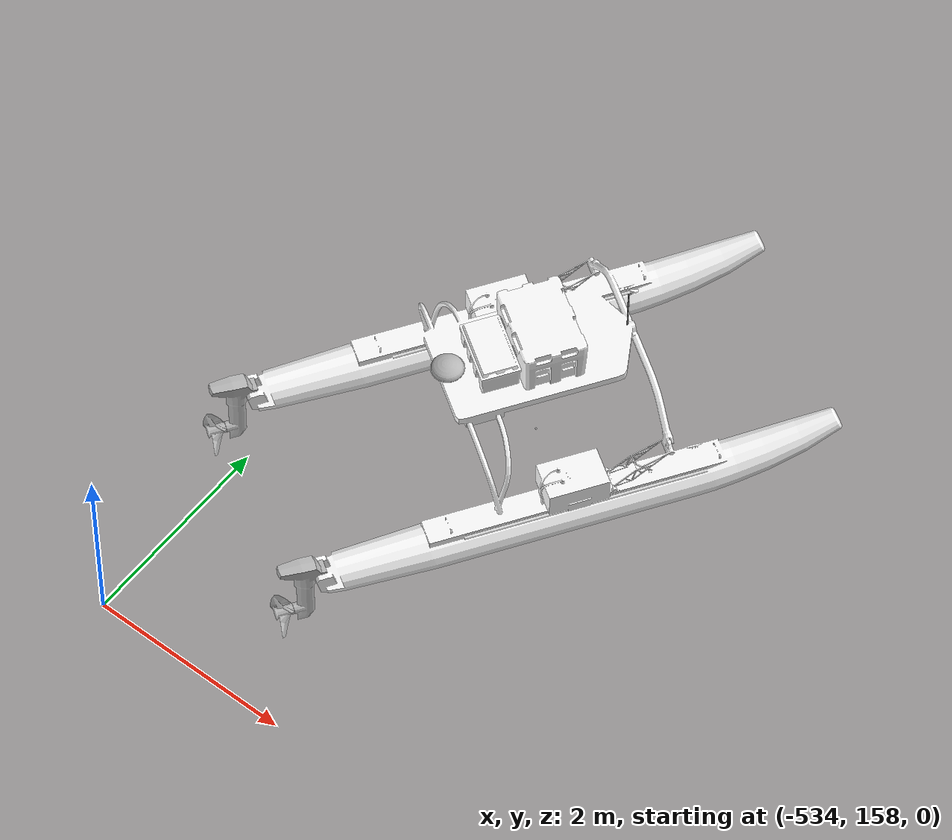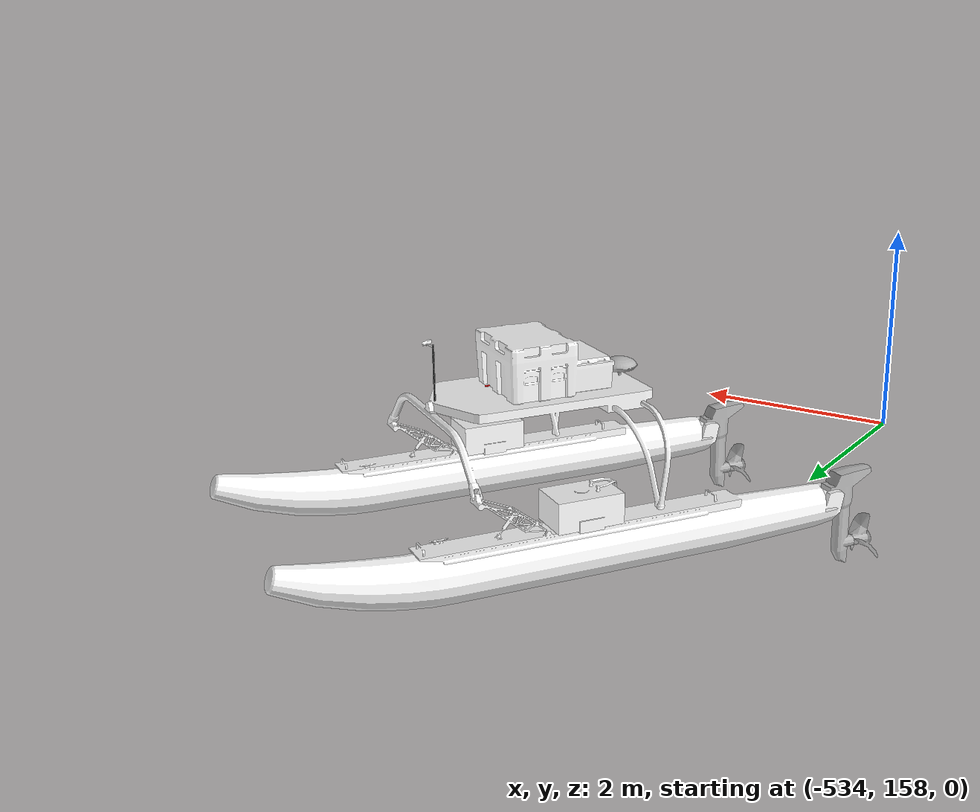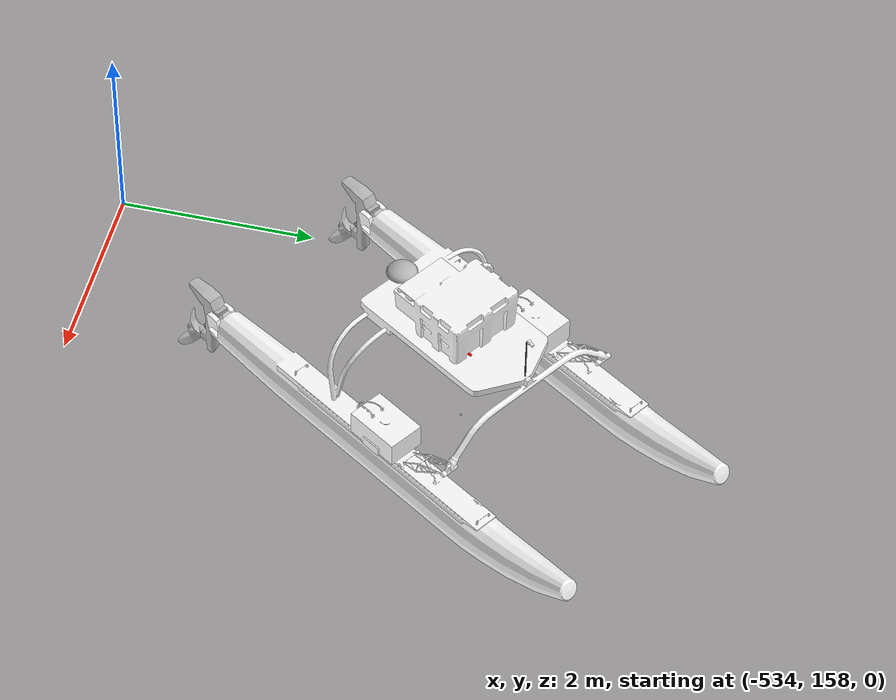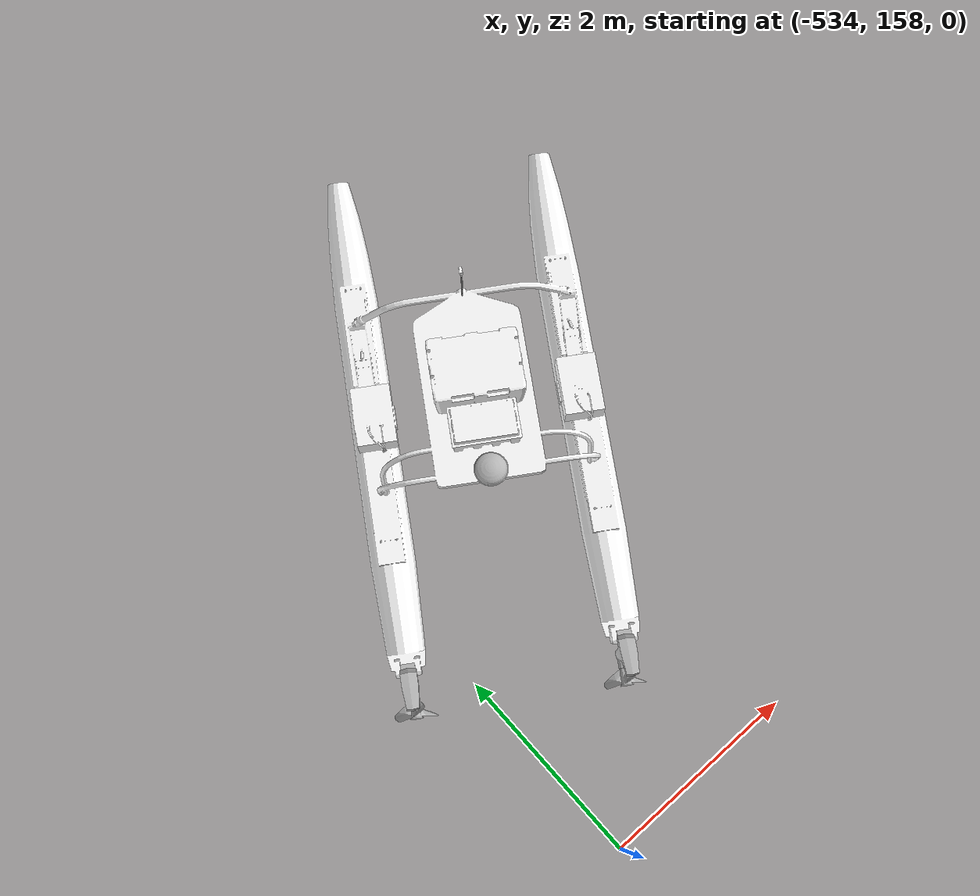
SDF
<sdf version="1.10">
 <world name="scan_dock_deliver_task">
  <physics name="4ms" type="dart">
   <max_step_size>0.0040000000000000001</max_step_size>
   <real_time_factor>1</real_time_factor>
   <real_time_update_rate>1000</real_time_update_rate>
  </physics>
  <plugin name="gz::sim::systems::Physics" filename="gz-sim-physics-system"/>
  <plugin name="gz::sim::systems::UserCommands" filename="gz-sim-user-commands-system"/>
  <plugin name="gz::sim::systems::Sensors" filename="gz-sim-sensors-system">
   <render_engine>ogre2</render_engine>
   <disable_on_drained_battery>true</disable_on_drained_battery>
  </plugin>
  <plugin name="gz::sim::systems::Imu" filename="gz-sim-imu-system"/>
  <plugin name="gz::sim::systems::Magnetometer" filename="gz-sim-magnetometer-system"/>
  <plugin name="gz::sim::systems::ForceTorque" filename="gz-sim-forcetorque-system"/>
  <plugin name="gz::sim::systems::ParticleEmitter2" filename="gz-sim-particle-emitter2-system"/>
  <plugin name="gz::sim::systems::SceneBroadcaster" filename="gz-sim-scene-broadcaster-system"/>
  <plugin name="gz::sim::systems::Contact" filename="gz-sim-contact-system"/>
  <plugin name="gz::sim::systems::NavSat" filename="gz-sim-navsat-system"/>
  <scene>
   <grid>false</grid>
   <ambient>1 1 1 1</ambient>
   <background>0.800000012 0.800000012 0.800000012 1</background>
   <shadows>true</shadows>
  </scene>
  <spherical_coordinates>
   <surface_model>EARTH_WGS84</surface_model>
   <world_frame_orientation>ENU</world_frame_orientation>
   <latitude_deg>-33.724223000000002</latitude_deg>
   <longitude_deg>150.67973599999999</longitude_deg>
   <elevation>0</elevation>
   <heading_deg>0</heading_deg>
  </spherical_coordinates>
  <plugin name="vrx::USVWind" filename="libUSVWind.so">
   <wind_obj>
    <name>wamv</name>
    <link_name>wamv/base_link</link_name>
    <coeff_vector>.5 .5 .33</coeff_vector>
   </wind_obj>
   <wind_direction>240</wind_direction>
   <wind_mean_velocity>0.0</wind_mean_velocity>
   <var_wind_gain_constants>0</var_wind_gain_constants>
   <var_wind_time_constants>2</var_wind_time_constants>
   <random_seed>10</random_seed>
   <update_rate>10</update_rate>
   <topic_wind_speed>/vrx/debug/wind/speed</topic_wind_speed>
   <topic_wind_direction>/vrx/debug/wind/direction</topic_wind_direction>
  </plugin>
  <plugin name="vrx::ScanDockScoringPlugin" filename="libScanDockScoringPlugin.so">
   <vehicle>wamv</vehicle>
   <task_name>scan_dock_deliver</task_name>
   <task_info_topic>/vrx/task/info</task_info_topic>
   <initial_state_duration>10</initial_state_duration>
   <ready_state_duration>10</ready_state_duration>
   <running_state_duration>300</running_state_duration>
   <release_topic>/vrx/release</release_topic>
   <color_sequence_topic>/vrx/scan_dock_deliver/color_sequence</color_sequence_topic>
   <color_1>red</color_1>
   <color_2>green</color_2>
   <color_3>blue</color_3>
   <bays>
    <bay>
     <name>bay1</name>
     <internal_activation_topic>/vrx/dock_2022/bay_1/contain</internal_activation_topic>
     <external_activation_topic>/vrx/dock_2022/bay_1_external/contain</external_activation_topic>
     <symbol_topic>/vrx/dock_2022_placard3/symbol</symbol_topic>
     <min_dock_time>10.0</min_dock_time>
     <correct_dock>True</correct_dock>
     <symbol>blue_triangle</symbol>
    </bay>
   </bays>
  </plugin>
  <plugin name="vrx::PublisherPlugin" filename="libPublisherPlugin.so">
   <message type="gz.msgs.Param" topic="/vrx/wavefield/parameters" every="2.0">params { key: "direction" value { type: DOUBLE double_value: 0.0 } } params { key: "gain" value { type: DOUBLE double_value: 0.3 } } params { key: "period" value { type: DOUBLE double_value: 5 } } params { key: "steepness" value { type: DOUBLE double_value: 0 } }</message>
  </plugin>
  <gravity>0 0 -9.8000000000000007</gravity>
  <magnetic_field>5.5644999999999998e-06 2.2875799999999999e-05 -4.2388400000000002e-05</magnetic_field>
  <atmosphere type="adiabatic"/>
  <include>
   <uri>file:///home/moonlab/ASV-Autonomous-Docking/install/share/vrx_gz/models/platform</uri>
   <name>platform</name>
  </include>
  <model name="wamv">
   <link name="wamv/base_link">
    <inertial>
     <pose>-0.0091897190339219996 1.4335351508916341e-17 0.24281062328901579 0 0 0</pose>
     <mass>247.82884999999999</mass>
     <inertia>
      <ixx>220.95081900491911</ixx>
      <ixy>-3.2648440516148013e-17</ixy>
      <ixz>2.835550517642174</ixz>
      <iyy>449.21365729546102</iyy>
      <iyz>-9.137202166832885e-16</iyz>
      <izz>498.81256554239633</izz>
     </inertia>
    </inertial>
    <collision name="wamv/base_link_fixed_joint_lump__left_float_collision">
     <pose>-0.40000000000000002 1.03 0.20000000000000001 0 1.5707963267948966 0</pose>
     <geometry><cylinder><length>4</length><radius>0.20000000000000001</radius></cylinder></geometry>
    </collision>
    <collision name="wamv/base_link_fixed_joint_lump__left_mid_float_collision_1">
     <pose>1.8500000000000001 1.03 0.29999999999999999 0 1.3799999999999997 0</pose>
     <geometry><cylinder><length>0.5</length><radius>0.17000000000000001</radius></cylinder></geometry>
    </collision>
    <collision name="wamv/base_link_fixed_joint_lump__left_front_float_collision_2">
     <pose>2.2999999999999998 1.03 0.40000000000000002 0 1.3 0</pose>
     <geometry><cylinder><length>0.45000000000000001</length><radius>0.12</radius></cylinder></geometry>
    </collision>
    <collision name="wamv/base_link_fixed_joint_lump__front_left_beam_lower_collision_3">
     <pose>0.90000000000000002 0.84999999999999998 1 0.78000000000000003 0 0</pose>
     <geometry><cylinder><length>0.5</length><radius>0.040000000000000001</radius></cylinder></geometry>
    </collision>
    <collision name="wamv/base_link_fixed_joint_lump__front_left_beam_upper_collision_4">
     <pose>0.90000000000000002 0.59999999999999998 1.1799999999999999 1.3500000000000001 0 0</pose>
     <geometry>
      <cylinder><length>0.20000000000000001</length><radius>0.040000000000000001</radius></cylinder>
     </geometry>
    </collision>
    <collision name="wamv/base_link_fixed_joint_lump__mid_left_beam_lower_collision_5">
     <pose>-0.65000000000000002 0.98999999999999999 0.69999999999999996 0.099999999999999964 0.25000000000000011 0</pose>
     <geometry>
      <cylinder><length>0.45000000000000001</length><radius>0.029999999999999999</radius></cylinder>
     </geometry>
    </collision>
    <collision name="wamv/base_link_fixed_joint_lump__mid_left_beam_medium_collision_6">
     <pose>-0.56999999999999995 0.87 1.05 0.75000000000000056 0.25000000000000028 0</pose>
     <geometry>
      <cylinder><length>0.32000000000000001</length><radius>0.029999999999999999</radius></cylinder>
     </geometry>
    </collision>
    <collision name="wamv/base_link_fixed_joint_lump__mid_left_beam_upper_collision_7">
     <pose>-0.55000000000000004 0.65000000000000002 1.1699999999999999 1.3500000000000001 0.25000000000000011 0</pose>
     <geometry>
      <cylinder><length>0.29999999999999999</length><radius>0.029999999999999999</radius></cylinder>
     </geometry>
    </collision>
    <collision name="wamv/base_link_fixed_joint_lump__rear_left_beam_lower_collision_8">
     <pose>-0.73999999999999999 1.03 0.69999999999999996 0 -0.14999999999999999 0</pose>
     <geometry>
      <cylinder><length>0.45000000000000001</length><radius>0.029999999999999999</radius></cylinder>
     </geometry>
    </collision>
    <collision name="wamv/base_link_fixed_joint_lump__rear_left_beam_medium_collision_9">
     <pose>-0.79000000000000004 0.91000000000000003 1.05 0.75000000000000033 -0.14999999999999999 -2.1053085164236764e-17</pose>
     <geometry>
      <cylinder><length>0.32000000000000001</length><radius>0.029999999999999999</radius></cylinder>
     </geometry>
    </collision>
    <collision name="wamv/base_link_fixed_joint_lump__rear_left_beam_upper_collision_10">
     <pose>-0.81000000000000005 0.67000000000000004 1.1799999999999999 1.45 -0.14999999999999999 0</pose>
     <geometry>
      <cylinder><length>0.29999999999999999</length><radius>0.029999999999999999</radius></cylinder>
     </geometry>
    </collision>
    <collision name="wamv/base_link_fixed_joint_lump__left_joint_collision_11">
     <pose>0.57999999999999996 1.03 0.59999999999999998 0 -0.59999999999999987 0</pose>
     <geometry><box><size>0.65000000000000002 0.20000000000000001 0.10000000000000001</size></box></geometry>
    </collision>
    <collision name="wamv/base_link_fixed_joint_lump__right_float_collision_12">
     <pose>-0.40000000000000002 -1.03 0.20000000000000001 0 1.5707963267948966 0</pose>
     <geometry><cylinder><length>4</length><radius>0.20000000000000001</radius></cylinder></geometry>
    </collision>
    <collision name="wamv/base_link_fixed_joint_lump__right_mid_float_collision_13">
     <pose>1.8500000000000001 -1.03 0.29999999999999999 0 1.3799999999999997 0</pose>
     <geometry><cylinder><length>0.5</length><radius>0.17000000000000001</radius></cylinder></geometry>
    </collision>
    <collision name="wamv/base_link_fixed_joint_lump__right_front_float_collision_14">
     <pose>2.2999999999999998 -1.03 0.40000000000000002 0 1.3 0</pose>
     <geometry><cylinder><length>0.45000000000000001</length><radius>0.12</radius></cylinder></geometry>
    </collision>
    <collision name="wamv/base_link_fixed_joint_lump__front_right_beam_lower_collision_15">
     <pose>0.90000000000000002 -0.84999999999999998 1 -0.78000000000000003 0 0</pose>
     <geometry><cylinder><length>0.5</length><radius>0.040000000000000001</radius></cylinder></geometry>
    </collision>
    <collision name="wamv/base_link_fixed_joint_lump__front_right_beam_upper_collision_16">
     <pose>0.90000000000000002 -0.59999999999999998 1.1799999999999999 -1.3500000000000001 0 0</pose>
     <geometry>
      <cylinder><length>0.20000000000000001</length><radius>0.040000000000000001</radius></cylinder>
     </geometry>
    </collision>
    <collision name="wamv/base_link_fixed_joint_lump__mid_right_beam_lower_collision_17">
     <pose>-0.65000000000000002 -0.98999999999999999 0.69999999999999996 -0.099999999999999964 0.25000000000000011 0</pose>
     <geometry>
      <cylinder><length>0.45000000000000001</length><radius>0.029999999999999999</radius></cylinder>
     </geometry>
    </collision>
    <collision name="wamv/base_link_fixed_joint_lump__mid_right_beam_medium_collision_18">
     <pose>-0.56999999999999995 -0.87 1.05 -0.75000000000000056 0.25000000000000028 0</pose>
     <geometry>
      <cylinder><length>0.32000000000000001</length><radius>0.029999999999999999</radius></cylinder>
     </geometry>
    </collision>
    <collision name="wamv/base_link_fixed_joint_lump__mid_right_beam_upper_collision_19">
     <pose>-0.55000000000000004 -0.65000000000000002 1.1699999999999999 -1.3500000000000001 0.25000000000000011 0</pose>
     <geometry>
      <cylinder><length>0.29999999999999999</length><radius>0.029999999999999999</radius></cylinder>
     </geometry>
    </collision>
    <collision name="wamv/base_link_fixed_joint_lump__rear_right_beam_lower_collision_20">
     <pose>-0.73999999999999999 -1.03 0.69999999999999996 0 -0.14999999999999999 0</pose>
     <geometry>
      <cylinder><length>0.45000000000000001</length><radius>0.029999999999999999</radius></cylinder>
     </geometry>
    </collision>
    <collision name="wamv/base_link_fixed_joint_lump__rear_right_beam_medium_collision_21">
     <pose>-0.79000000000000004 -0.91000000000000003 1.05 -0.75000000000000033 -0.14999999999999999 2.1053085164236764e-17</pose>
     <geometry>
      <cylinder><length>0.32000000000000001</length><radius>0.029999999999999999</radius></cylinder>
     </geometry>
    </collision>
    <collision name="wamv/base_link_fixed_joint_lump__rear_right_beam_upper_collision_22">
     <pose>-0.81000000000000005 -0.67000000000000004 1.1799999999999999 -1.45 -0.14999999999999999 0</pose>
     <geometry>
      <cylinder><length>0.29999999999999999</length><radius>0.029999999999999999</radius></cylinder>
     </geometry>
    </collision>
    <collision name="wamv/base_link_fixed_joint_lump__right_joint_collision_23">
     <pose>0.57999999999999996 -1.03 0.59999999999999998 0 -0.59999999999999987 0</pose>
     <geometry><box><size>0.65000000000000002 0.20000000000000001 0.10000000000000001</size></box></geometry>
    </collision>
    <collision name="wamv/base_link_fixed_joint_lump__top_base_collision_24">
     <pose>0 0 1.25 0 0 0</pose>
     <geometry><box><size>1.8500000000000001 1 0.10000000000000001</size></box></geometry>
    </collision>
    <collision name="wamv/base_link_fixed_joint_lump__front_right_camera_post_collision_collision_25">
     <pose>0.84999999999999998 0 1.5347500000000001 0 0 0</pose>
     <geometry><cylinder><length>0.47649999999999998</length><radius>0.0076</radius></cylinder></geometry>
    </collision>
    <collision name="wamv/base_link_fixed_joint_lump__front_right_camera_post_arm_collision_collision_26">
     <pose>0.88 0 1.7729999999999999 -1.2042771838760871 5.5511151231257827e-17 -1.570796326794897</pose>
     <geometry>
      <cylinder><length>0.065000000000000002</length><radius>0.0080000000000000002</radius></cylinder>
     </geometry>
    </collision>
    <collision name="wamv/base_link_fixed_joint_lump__front_right_camera_lens_collision_collision_27">
     <pose>0.91738666487320319 0 1.7953412571881551 3.1415926535897931 1.3089969389957472 3.1415926535897931</pose>
     <geometry>
      <cylinder><length>0.042000000000000003</length><radius>0.014999999999999999</radius></cylinder>
     </geometry>
    </collision>
    <collision name="wamv/base_link_fixed_joint_lump__front_right_camera_box_collision_collision_28">
     <pose>0.88019852056107406 0 1.8053057904246019 0 0.26179938779914941 0</pose>
     <geometry><box><size>0.035999999999999997 0.029999999999999999 0.029999999999999999</size></box></geometry>
    </collision>
    <collision name="wamv/base_link_fixed_joint_lump__cpu_case_1_collision_collision_29">
     <pose>0.035000000000000003 0 1.53 0 0 0</pose>
     <geometry><box><size>0.59499999999999997 0.82999999999999996 0.46999999999999997</size></box></geometry>
    </collision>
    <collision name="wamv/base_link_fixed_joint_lump__cpu_case_2_collision_collision_30">
     <pose>-0.45000000000000001 0 1.4379999999999999 0 0 0</pose>
     <geometry><box><size>0.375 0.64000000000000001 0.28000000000000003</size></box></geometry>
    </collision>
    <collision name="wamv/base_link_fixed_joint_lump__left_battery_collision_collision_31">
     <pose>0 1 0.59999999999999998 0 0 0</pose>
     <geometry><box><size>0.59999999999999998 0.40000000000000002 0.31</size></box></geometry>
    </collision>
    <collision name="wamv/base_link_fixed_joint_lump__right_battery_collision_collision_32">
     <pose>0 -1 0.59999999999999998 0 0 0</pose>
     <geometry><box><size>0.59999999999999998 0.40000000000000002 0.31</size></box></geometry>
    </collision>
    <visual name="wamv/base_link_visual">
     <geometry>
      <mesh>
       <scale>1 1 1</scale>
       <uri>file:///model://wamv_description/models/WAM-V-Base/mesh/WAM-V-Base.dae</uri>
      </mesh>
     </geometry>
     <material>
      <diffuse>1 1 1 1</diffuse>
      <specular>1 1 1 1</specular>
      <pbr>
       <metal>
        <albedo_map>model://wamv_description/models/WAM-V-Base/mesh/WAM-V_Albedo.png</albedo_map>
        <normal_map>model://wamv_description/models/WAM-V-Base/mesh/WAM-V_Normal.png</normal_map>
        <roughness_map>model://wamv_description/models/WAM-V-Base/mesh/WAM-V_Roughness.png</roughness_map>
        <metalness_map>model://wamv_description/models/WAM-V-Base/mesh/WAM-V_Metalness.png</metalness_map>
       </metal>
      </pbr>
     </material>
    </visual>
    <visual name="wamv/base_link_fixed_joint_lump__wamv/front_right_camera_post_link_visual_1">
     <pose>0.84999999999999998 0 1.5347500000000001 0 0 0</pose>
     <geometry><cylinder><length>0.47649999999999998</length><radius>0.0076</radius></cylinder></geometry>
     <material><diffuse>0 0 0 1</diffuse><ambient>0 0 0 1</ambient></material>
    </visual>
    <visual name="wamv/base_link_fixed_joint_lump__front_right_camera_post_arm_visual_visual_2">
     <pose>0.84199999999999997 0 1.77 -1.0471975511965981 5.5511151231257827e-17 -1.570796326794897</pose>
     <geometry>
      <mesh>
       <scale>1 1 1</scale>
       <uri>file:///model://vrx_gazebo/models/sensor_post/mesh/sensor_post_arm.dae</uri>
      </mesh>
     </geometry>
    </visual>
    <visual name="wamv/base_link_fixed_joint_lump__wamv/front_right_camera_link_visual_3">
     <pose>0.86812444773246067 0 1.8085410284883829 0.26179938779914941 2.7755575615628914e-17 1.570796326794897</pose>
     <geometry>
      <mesh><scale>1 1 1</scale><uri>file:///model://vrx_gazebo/models/mono_camera/mesh/mono_camera.dae</uri></mesh>
     </geometry>
     <material>
      <diffuse>1 1 1 1</diffuse>
      <specular>1 1 1 1</specular>
      <pbr>
       <metal>
        <albedo_map>model://vrx_gazebo/models/mono_camera/mesh/mono_camera_Albedo.png</albedo_map>
        <normal_map>model://vrx_gazebo/models/mono_camera/mesh/mono_camera_Normal.png</normal_map>
        <roughness_map>model://vrx_gazebo/models/mono_camera/mesh/mono_camera_Roughness.png</roughness_map>
        <metalness_map>model://vrx_gazebo/models/mono_camera/mesh/mono_camera_Metalness.png</metalness_map>
       </metal>
      </pbr>
     </material>
    </visual>
    <visual name="wamv/base_link_fixed_joint_lump__wamv/cpu_cases_link_visual_4">
     <pose>-0.076999999999999999 0 0 0 0 0</pose>
     <geometry>
      <mesh><scale>1 1 1</scale><uri>file:///model://vrx_gazebo/models/cpu_cases/mesh/cpu_cases.dae</uri></mesh>
     </geometry>
     <material>
      <diffuse>1 1 1 1</diffuse>
      <specular>1 1 1 1</specular>
      <pbr>
       <metal>
        <albedo_map>model://vrx_gazebo/models/cpu_cases/mesh/cpu_cases_Albedo.png</albedo_map>
        <normal_map>model://vrx_gazebo/models/cpu_cases/mesh/cpu_cases_Normal.png</normal_map>
        <roughness_map>model://vrx_gazebo/models/cpu_cases/mesh/cpu_cases_Roughness.png</roughness_map>
        <metalness_map>model://vrx_gazebo/models/cpu_cases/mesh/cpu_cases_Metalness.png</metalness_map>
       </metal>
      </pbr>
     </material>
    </visual>
    <visual name="wamv/base_link_fixed_joint_lump__wamv/left_battery_link_visual_5">
     <pose>0 -0.03000000000000003 0 0 0 0</pose>
     <geometry>
      <mesh><scale>1 1 1</scale><uri>file:///model://vrx_gazebo/models/battery/mesh/battery.dae</uri></mesh>
     </geometry>
     <material>
      <diffuse>1 1 1 1</diffuse>
      <specular>1 1 1 1</specular>
      <pbr>
       <metal>
        <albedo_map>model://vrx_gazebo/models/battery/mesh/battery_Albedo.png</albedo_map>
        <normal_map>model://vrx_gazebo/models/battery/mesh/battery_Normal.png</normal_map>
        <roughness_map>model://vrx_gazebo/models/battery/mesh/battery_Roughness.png</roughness_map>
        <metalness_map>model://vrx_gazebo/models/battery/mesh/battery_Metalness.png</metalness_map>
       </metal>
      </pbr>
     </material>
    </visual>
    <visual name="wamv/base_link_fixed_joint_lump__wamv/right_battery_link_visual_6">
     <pose>0 -2.0299999999999998 0 0 0 0</pose>
     <geometry>
      <mesh><scale>1 1 1</scale><uri>file:///model://vrx_gazebo/models/battery/mesh/battery.dae</uri></mesh>
     </geometry>
     <material>
      <diffuse>1 1 1 1</diffuse>
      <specular>1 1 1 1</specular>
      <pbr>
       <metal>
        <albedo_map>model://vrx_gazebo/models/battery/mesh/battery_Albedo.png</albedo_map>
        <normal_map>model://vrx_gazebo/models/battery/mesh/battery_Normal.png</normal_map>
        <roughness_map>model://vrx_gazebo/models/battery/mesh/battery_Roughness.png</roughness_map>
        <metalness_map>model://vrx_gazebo/models/battery/mesh/battery_Metalness.png</metalness_map>
       </metal>
      </pbr>
     </material>
    </visual>
    <sensor name="contact_sensor" type="contact">
     <contact>
      <collision>wamv/base_link_fixed_joint_lump__top_base_collision_24</collision>
      <collision>wamv/base_link_fixed_joint_lump__left_float_collision</collision>
      <collision>wamv/base_link_fixed_joint_lump__left_mid_float_collision_1</collision>
      <collision>wamv/base_link_fixed_joint_lump__left_front_float_collision_2</collision>
      <collision>wamv/base_link_fixed_joint_lump__right_float_collision_12</collision>
      <collision>wamv/base_link_fixed_joint_lump__right_mid_float_collision_13</collision>
      <collision>wamv/base_link_fixed_joint_lump__right_front_float_collision_14</collision>
      <topic>/vrx/contacts</topic>
     </contact>
     <always_on>true</always_on>
     <update_rate>5</update_rate>
    </sensor>
    <sensor name="front_right_camera_sensor" type="camera">
     <pose>0.90000000000000002 0 1.8 0 0.261799 0</pose>
     <topic>__default__</topic>
     <update_rate>30</update_rate>
     <enable_metrics>false</enable_metrics>
     <camera name="front_right_camera_camera">
      <horizontal_fov>1.3962634</horizontal_fov>
      <image>
       <width>1280</width>
       <height>720</height>
       <format>RGB_INT8</format>
       <anti_aliasing>4</anti_aliasing>
      </image>
      <camera_info_topic>__default__</camera_info_topic>
      <triggered>false</triggered>
      <clip><near>0.050000000000000003</near><far>400</far></clip>
      <save enabled="false"><path>__default__</path></save>
      <visibility_mask>4294967295</visibility_mask>
      <noise><type>gaussian</type><mean>0</mean><stddev>0.0070000000000000001</stddev></noise>
      <distortion><k1>0</k1><k2>0</k2><k3>0</k3><p1>0</p1><p2>0</p2><center>0.5 0.5</center></distortion>
      <lens>
       <type>stereographic</type>
       <scale_to_hfov>true</scale_to_hfov>
       <cutoff_angle>1.5707963267948966</cutoff_angle>
       <env_texture_size>256</env_texture_size>
      </lens>
     </camera>
    </sensor>
    <enable_wind>true</enable_wind>
   </link>
   <joint name="wamv/gps_wamv_joint" type="revolute">
    <parent>wamv/base_link</parent>
    <child>wamv/gps_wamv_link</child>
    <axis>
     <xyz>0 0 1</xyz>
     <limit>
      <lower>0</lower>
      <upper>0</upper>
      <effort>1000</effort>
      <velocity>0</velocity>
      <stiffness>100000000</stiffness>
      <dissipation>1</dissipation>
     </limit>
     <dynamics>
      <spring_reference>0</spring_reference>
      <spring_stiffness>0</spring_stiffness>
      <damping>0</damping>
      <friction>0</friction>
     </dynamics>
    </axis>
   </joint>
   <link name="wamv/gps_wamv_link">
    <pose>-0.85000000000005116 0 1.2999999999999998 -4.3368086919109258e-19 -3.4694469519290035e-18 1.134997651419667e-10</pose>
    <inertial>
     <mass>1</mass>
     <inertia>
      <ixx>0.0064580000000000002</ixx>
      <ixy>0</ixy>
      <ixz>0</ixz>
      <iyy>0.0064580000000000002</iyy>
      <iyz>0</iyz>
      <izz>0.01125</izz>
     </inertia>
    </inertial>
    <collision name="wamv/gps_wamv_link_fixed_joint_lump__gps_wamv_collision_base_collision">
     <pose>0 0 0.025000000000000001 0 0 0</pose>
     <geometry>
      <cylinder><length>0.050000000000000003</length><radius>0.014999999999999999</radius></cylinder>
     </geometry>
    </collision>
    <collision name="wamv/gps_wamv_link_fixed_joint_lump__gps_wamv_collision_antenna_collision_1">
     <pose>0 0 0.11 0 0 0</pose>
     <geometry>
      <cylinder><length>0.10000000000000001</length><radius>0.14999999999999999</radius></cylinder>
     </geometry>
    </collision>
    <visual name="wamv/gps_wamv_link_fixed_joint_lump__gps_wamv_visual_visual">
     <geometry>
      <mesh><scale>1 1 1</scale><uri>file:///model://wamv_gazebo/models/gps/mesh/gps.dae</uri></mesh>
     </geometry>
    </visual>
    <sensor name="navsat" type="navsat"><always_on>true</always_on><update_rate>20</update_rate></sensor>
    <enable_wind>true</enable_wind>
   </link>
   <joint name="wamv/imu_wamv_joint" type="revolute">
    <parent>wamv/base_link</parent>
    <child>wamv/imu_wamv_link</child>
    <axis>
     <xyz>0 0 1</xyz>
     <limit>
      <lower>0</lower>
      <upper>0</upper>
      <effort>1000</effort>
      <velocity>0</velocity>
      <stiffness>100000000</stiffness>
      <dissipation>1</dissipation>
     </limit>
     <dynamics>
      <spring_reference>0</spring_reference>
      <spring_stiffness>0</spring_stiffness>
      <damping>0</damping>
      <friction>0</friction>
     </dynamics>
    </axis>
   </joint>
   <link name="wamv/imu_wamv_link">
    <pose>0.29999999999998295 -0.19999999999993179 1.2999999999999996 -4.3368086898938127e-19 8.6736173799081404e-19 1.1115552922547069e-11</pose>
    <inertial>
     <mass>0.10000000000000001</mass>
     <inertia>
      <ixx>5.4199999999999998e-06</ixx>
      <ixy>0</ixy>
      <ixz>0</ixz>
      <iyy>2.1039999999999998e-05</iyy>
      <iyz>0</iyz>
      <izz>2.6040000000000001e-05</izz>
     </inertia>
    </inertial>
    <collision name="wamv/imu_wamv_link_fixed_joint_lump__imu_wamv_collision_collision">
     <geometry><box><size>0.050000000000000003 0.025000000000000001 0.0050000000000000001</size></box></geometry>
    </collision>
    <visual name="wamv/imu_wamv_link_fixed_joint_lump__imu_wamv_visual_visual">
     <geometry><box><size>0.050000000000000003 0.025000000000000001 0.0050000000000000001</size></box></geometry>
     <material><diffuse>1 0 0 1</diffuse><ambient>1 0 0 1</ambient></material>
    </visual>
    <sensor name="imu_wamv_sensor" type="imu">
     <topic>__default__</topic>
     <update_rate>100</update_rate>
     <enable_metrics>false</enable_metrics>
     <imu>
      <orientation_reference_frame>
       <localization>ENU</localization>
       <custom_rpy>0 0 0</custom_rpy>
       <grav_dir_x>1 0 0</grav_dir_x>
      </orientation_reference_frame>
      <angular_velocity>
       <x>
        <noise type="gaussian">
         <mean>0</mean>
         <stddev>0.0089999999999999993</stddev>
         <bias_mean>0.00075000000000000002</bias_mean>
         <bias_stddev>0.0050000000000000001</bias_stddev>
         <dynamic_bias_stddev>2.0000000000000002e-05</dynamic_bias_stddev>
         <dynamic_bias_correlation_time>400</dynamic_bias_correlation_time>
         <precision>0.00025000000000000001</precision>
        </noise>
       </x>
       <y>
        <noise type="gaussian">
         <mean>0</mean>
         <stddev>0.0089999999999999993</stddev>
         <bias_mean>0.00075000000000000002</bias_mean>
         <bias_stddev>0.0050000000000000001</bias_stddev>
         <dynamic_bias_stddev>2.0000000000000002e-05</dynamic_bias_stddev>
         <dynamic_bias_correlation_time>400</dynamic_bias_correlation_time>
         <precision>0.00025000000000000001</precision>
        </noise>
       </y>
       <z>
        <noise type="gaussian">
         <mean>0</mean>
         <stddev>0.0089999999999999993</stddev>
         <bias_mean>0.00075000000000000002</bias_mean>
         <bias_stddev>0.0050000000000000001</bias_stddev>
         <dynamic_bias_stddev>2.0000000000000002e-05</dynamic_bias_stddev>
         <dynamic_bias_correlation_time>400</dynamic_bias_correlation_time>
         <precision>0.00025000000000000001</precision>
        </noise>
       </z>
      </angular_velocity>
      <linear_acceleration>
       <x>
        <noise type="gaussian">
         <mean>0</mean>
         <stddev>0.021000000000000001</stddev>
         <bias_mean>0.050000000000000003</bias_mean>
         <bias_stddev>0.0074999999999999997</bias_stddev>
         <dynamic_bias_stddev>0.00037500000000000001</dynamic_bias_stddev>
         <dynamic_bias_correlation_time>175</dynamic_bias_correlation_time>
         <precision>0.0050000000000000001</precision>
        </noise>
       </x>
       <y>
        <noise type="gaussian">
         <mean>0</mean>
         <stddev>0.021000000000000001</stddev>
         <bias_mean>0.050000000000000003</bias_mean>
         <bias_stddev>0.0074999999999999997</bias_stddev>
         <dynamic_bias_stddev>0.00037500000000000001</dynamic_bias_stddev>
         <dynamic_bias_correlation_time>175</dynamic_bias_correlation_time>
         <precision>0.0050000000000000001</precision>
        </noise>
       </y>
       <z>
        <noise type="gaussian">
         <mean>0</mean>
         <stddev>0.021000000000000001</stddev>
         <bias_mean>0.050000000000000003</bias_mean>
         <bias_stddev>0.0074999999999999997</bias_stddev>
         <dynamic_bias_stddev>0.00037500000000000001</dynamic_bias_stddev>
         <dynamic_bias_correlation_time>175</dynamic_bias_correlation_time>
         <precision>0.0050000000000000001</precision>
        </noise>
       </z>
      </linear_acceleration>
      <enable_orientation>true</enable_orientation>
     </imu>
    </sensor>
    <enable_wind>true</enable_wind>
   </link>
   <joint name="wamv/left_chassis_engine_joint" type="revolute">
    <parent>wamv/base_link</parent>
    <child>wamv/left_engine_link</child>
    <axis>
     <xyz>0 0 1</xyz>
     <limit>
      <lower>-3.1415926535897931</lower>
      <upper>3.1415926535897931</upper>
      <effort>10</effort>
      <velocity>10</velocity>
      <stiffness>100000000</stiffness>
      <dissipation>1</dissipation>
     </limit>
     <dynamics>
      <spring_reference>0</spring_reference>
      <spring_stiffness>0</spring_stiffness>
      <damping>0</damping>
      <friction>0</friction>
     </dynamics>
    </axis>
   </joint>
   <link name="wamv/left_engine_link">
    <pose>-2.3737760000002197 1.0271350000000439 0.31823699999999944 4.3368086899420226e-19 -8.6736173798840335e-19 -1.1102230246251565e-15</pose>
    <inertial>
     <mass>15</mass>
     <inertia>
      <ixx>0.88924499999999995</ixx>
      <ixy>0</ixy>
      <ixz>0</ixz>
      <iyy>0.91112499999999996</iyy>
      <iyz>0</iyz>
      <izz>0.078125</izz>
     </inertia>
    </inertial>
    <collision name="wamv/left_engine_link_fixed_joint_lump__left_engine_vertical_axis_collision_collision">
     <pose>-0.16 0 -0.23999999999999999 0 0 0</pose>
     <geometry><box><size>0.20000000000000001 0.14999999999999999 0.82999999999999996</size></box></geometry>
    </collision>
    <collision name="wamv/left_engine_link_fixed_joint_lump__left_engine_rear_end_collision_collision_1">
     <pose>-0.34000000000000002 0 0.12 0 0 0</pose>
     <geometry><box><size>0.12 0.14999999999999999 0.12</size></box></geometry>
    </collision>
    <visual name="wamv/left_engine_link_visual">
     <geometry>
      <mesh><scale>1 1 1</scale><uri>file:///model://wamv_description/models/engine/mesh/engine.dae</uri></mesh>
     </geometry>
    </visual>
    <enable_wind>true</enable_wind>
   </link>
   <joint name="wamv/left_engine_propeller_joint" type="revolute">
    <parent>wamv/left_engine_link</parent>
    <child>wamv/left_propeller_link</child>
    <axis>
     <xyz>1 0 0</xyz>
     <limit>
      <lower>-inf</lower>
      <upper>inf</upper>
      <effort>100</effort>
      <velocity>100</velocity>
      <stiffness>100000000</stiffness>
      <dissipation>1</dissipation>
     </limit>
     <dynamics>
      <spring_reference>0</spring_reference>
      <spring_stiffness>0</spring_stiffness>
      <damping>0.050000000000000003</damping>
      <friction>0.050000000000000003</friction>
     </dynamics>
    </axis>
   </joint>
   <link name="wamv/left_propeller_link">
    <pose>-2.6519320000001301 1.0271350000002712 -0.19113399999999969 -3.06222061596806e-14 -1.6998739171647854e-29 -1.1102230246251569e-15</pose>
    <inertial>
     <mass>0.5</mass>
     <inertia>
      <ixx>0.0085450000000000005</ixx>
      <ixy>0</ixy>
      <ixz>0</ixz>
      <iyy>0.0085450000000000005</iyy>
      <iyz>0</iyz>
      <izz>0.0144</izz>
     </inertia>
    </inertial>
    <collision name="wamv/left_propeller_link_fixed_joint_lump__left_propeller_collision_collision">
     <pose>-0.080000000000000002 0 0 0 1.5707963267948966 0</pose>
     <geometry>
      <cylinder><length>0.17999999999999999</length><radius>0.23999999999999999</radius></cylinder>
     </geometry>
    </collision>
    <visual name="wamv/left_propeller_link_visual">
     <geometry>
      <mesh>
       <scale>1 1 1</scale>
       <uri>file:///model://wamv_description/models/propeller/mesh/propeller.dae</uri>
      </mesh>
     </geometry>
    </visual>
    <enable_wind>true</enable_wind>
   </link>
   <joint name="wamv/receiver_pinger_joint" type="revolute">
    <parent>wamv/base_link</parent>
    <child>wamv/receiver</child>
    <axis>
     <xyz>0 0 1</xyz>
     <limit>
      <lower>0</lower>
      <upper>0</upper>
      <effort>1000</effort>
      <velocity>0</velocity>
      <stiffness>100000000</stiffness>
      <dissipation>1</dissipation>
     </limit>
     <dynamics>
      <spring_reference>0</spring_reference>
      <spring_stiffness>0</spring_stiffness>
      <damping>0</damping>
      <friction>0</friction>
     </dynamics>
    </axis>
   </joint>
   <link name="wamv/receiver">
    <pose>-8.5265128291212022e-14 0 2.2204460492503131e-16 1.7347234759816289e-18 8.6736173797876215e-19 1.1115997011756919e-11</pose>
    <inertial>
     <mass>0.10000000000000001</mass>
     <inertia>
      <ixx>5.4199999999999998e-06</ixx>
      <ixy>0</ixy>
      <ixz>0</ixz>
      <iyy>2.1039999999999998e-05</iyy>
      <iyz>0</iyz>
      <izz>2.6040000000000001e-05</izz>
     </inertia>
    </inertial>
    <visual name="wamv/receiver_visual"><geometry><sphere><radius>0.01</radius></sphere></geometry></visual>
    <enable_wind>true</enable_wind>
   </link>
   <joint name="wamv/right_chassis_engine_joint" type="revolute">
    <parent>wamv/base_link</parent>
    <child>wamv/right_engine_link</child>
    <axis>
     <xyz>0 0 1</xyz>
     <limit>
      <lower>-3.1415926535897931</lower>
      <upper>3.1415926535897931</upper>
      <effort>10</effort>
      <velocity>10</velocity>
      <stiffness>100000000</stiffness>
      <dissipation>1</dissipation>
     </limit>
     <dynamics>
      <spring_reference>0</spring_reference>
      <spring_stiffness>0</spring_stiffness>
      <damping>0</damping>
      <friction>0</friction>
     </dynamics>
    </axis>
   </joint>
   <link name="wamv/right_engine_link">
    <pose>-2.3737760000001344 -1.0271350000000439 0.3182370000000001 4.3368086899420226e-19 -8.6736173798840335e-19 -1.1102230246251565e-15</pose>
    <inertial>
     <mass>15</mass>
     <inertia>
      <ixx>0.88924499999999995</ixx>
      <ixy>0</ixy>
      <ixz>0</ixz>
      <iyy>0.91112499999999996</iyy>
      <iyz>0</iyz>
      <izz>0.078125</izz>
     </inertia>
    </inertial>
    <collision name="wamv/right_engine_link_fixed_joint_lump__right_engine_vertical_axis_collision_collision">
     <pose>-0.16 0 -0.23999999999999999 0 0 0</pose>
     <geometry><box><size>0.20000000000000001 0.14999999999999999 0.82999999999999996</size></box></geometry>
    </collision>
    <collision name="wamv/right_engine_link_fixed_joint_lump__right_engine_rear_end_collision_collision_1">
     <pose>-0.34000000000000002 0 0.12 0 0 0</pose>
     <geometry><box><size>0.12 0.14999999999999999 0.12</size></box></geometry>
    </collision>
    <visual name="wamv/right_engine_link_visual">
     <geometry>
      <mesh><scale>1 1 1</scale><uri>file:///model://wamv_description/models/engine/mesh/engine.dae</uri></mesh>
     </geometry>
    </visual>
    <enable_wind>true</enable_wind>
   </link>
   <joint name="wamv/right_engine_propeller_joint" type="revolute">
    <parent>wamv/right_engine_link</parent>
    <child>wamv/right_propeller_link</child>
    <axis>
     <xyz>1 0 0</xyz>
     <limit>
      <lower>-inf</lower>
      <upper>inf</upper>
      <effort>100</effort>
      <velocity>100</velocity>
      <stiffness>100000000</stiffness>
      <dissipation>1</dissipation>
     </limit>
     <dynamics>
      <spring_reference>0</spring_reference>
      <spring_stiffness>0</spring_stiffness>
      <damping>0.050000000000000003</damping>
      <friction>0.050000000000000003</friction>
     </dynamics>
    </axis>
   </joint>
   <link name="wamv/right_propeller_link">
    <pose>-2.6519320000001017 -1.0271349999998165 -0.19113399999999992 -3.062741033010853e-14 8.673617379714023e-19 -1.1102230246251569e-15</pose>
    <inertial>
     <mass>0.5</mass>
     <inertia>
      <ixx>0.0085450000000000005</ixx>
      <ixy>0</ixy>
      <ixz>0</ixz>
      <iyy>0.0085450000000000005</iyy>
      <iyz>0</iyz>
      <izz>0.0144</izz>
     </inertia>
    </inertial>
    <collision name="wamv/right_propeller_link_fixed_joint_lump__right_propeller_collision_collision">
     <pose>-0.080000000000000002 0 0 0 1.5707963267948966 0</pose>
     <geometry>
      <cylinder><length>0.17999999999999999</length><radius>0.23999999999999999</radius></cylinder>
     </geometry>
    </collision>
    <visual name="wamv/right_propeller_link_visual">
     <geometry>
      <mesh>
       <scale>1 1 1</scale>
       <uri>file:///model://wamv_description/models/propeller/mesh/propeller.dae</uri>
      </mesh>
     </geometry>
    </visual>
    <enable_wind>true</enable_wind>
   </link>
   <enable_wind>true</enable_wind>
   <plugin name="gz::sim::systems::Thruster" filename="gz-sim-thruster-system">
    <joint_name>wamv/left_engine_propeller_joint</joint_name>
    <thrust_coefficient>0.004422</thrust_coefficient>
    <fluid_density>1000</fluid_density>
    <propeller_diameter>0.2</propeller_diameter>
    <velocity_control>true</velocity_control>
    <max_thrust_cmd>2353.53383667818</max_thrust_cmd>
    <namespace>wamv</namespace>
    <topic>thrusters/left/thrust</topic>
    <name>left</name>
   </plugin>
   <plugin name="gz::sim::systems::JointPositionController" filename="gz-sim-joint-position-controller-system">
    <joint_name>wamv/left_chassis_engine_joint</joint_name>
    <use_velocity_commands>true</use_velocity_commands>
    <topic>wamv/thrusters/left/pos</topic>
    <name>left</name>
   </plugin>
   <plugin name="gz::sim::systems::Thruster" filename="gz-sim-thruster-system">
    <joint_name>wamv/right_engine_propeller_joint</joint_name>
    <thrust_coefficient>0.004422</thrust_coefficient>
    <fluid_density>1000</fluid_density>
    <propeller_diameter>0.2</propeller_diameter>
    <velocity_control>true</velocity_control>
    <max_thrust_cmd>2353.53383667818</max_thrust_cmd>
    <namespace>wamv</namespace>
    <topic>thrusters/right/thrust</topic>
    <name>right</name>
   </plugin>
   <plugin name="gz::sim::systems::JointPositionController" filename="gz-sim-joint-position-controller-system">
    <joint_name>wamv/right_chassis_engine_joint</joint_name>
    <use_velocity_commands>true</use_velocity_commands>
    <topic>wamv/thrusters/right/pos</topic>
    <name>right</name>
   </plugin>
   <plugin name="vrx::Surface" filename="libSurface.so">
    <link_name>wamv/base_link</link_name>
    <hull_length>4.9</hull_length>
    <hull_radius>0.213</hull_radius>
    <fluid_level>0</fluid_level>
    <points><point>0.6 1.03 0</point><point>-1.4 1.03 0</point></points>
    <wavefield><topic>/vrx/wavefield/parameters</topic></wavefield>
   </plugin>
   <plugin name="vrx::Surface" filename="libSurface.so">
    <link_name>wamv/base_link</link_name>
    <hull_length>4.9</hull_length>
    <hull_radius>0.213</hull_radius>
    <fluid_level>0</fluid_level>
    <points><point>0.6 -1.03 0</point><point>-1.4 -1.03 0</point></points>
    <wavefield><topic>/vrx/wavefield/parameters</topic></wavefield>
   </plugin>
   <plugin name="vrx::SimpleHydrodynamics" filename="libSimpleHydrodynamics.so">
    <link_name>wamv/base_link</link_name>
    <xDotU>0.0</xDotU>
    <yDotV>0.0</yDotV>
    <nDotR>0.0</nDotR>
    <xU>100.0</xU>
    <xUU>150.0</xUU>
    <yV>100.0</yV>
    <yVV>100.0</yVV>
    <zW>500.0</zW>
    <kP>300.0</kP>
    <kPP>600.0</kPP>
    <mQ>900.0</mQ>
    <mQQ>900.0</mQQ>
    <nR>800.0</nR>
    <nRR>800.0</nRR>
   </plugin>
   <plugin name="gz::sim::systems::DetachableJoint" filename="gz-sim-detachable-joint-system">
    <parent_link>wamv/base_link</parent_link>
    <child_model>platform</child_model>
    <child_link>dummy_upper</child_link>
    <topic>/vrx/release</topic>
    <suppress_child_warning>true</suppress_child_warning>
   </plugin>
   <plugin name="gz::sim::systems::PosePublisher" filename="libgz-sim-pose-publisher-system.so">
    <publish_link_pose>false</publish_link_pose>
    <publish_sensor_pose>true</publish_sensor_pose>
    <publish_collision_pose>false</publish_collision_pose>
    <publish_visual_pose>false</publish_visual_pose>
    <publish_nested_model_pose>false</publish_nested_model_pose>
    <publish_model_pose>false</publish_model_pose>
    <use_pose_vector_msg>true</use_pose_vector_msg>
    <static_publisher>false</static_publisher>
    <static_update_frequency>1</static_update_frequency>
   </plugin>
   <plugin name="gz::sim::systems::JointStatePublisher" filename="gz-sim-joint-state-publisher-system"/>
   <plugin name="vrx::AcousticPingerPlugin" filename="libAcousticPingerPlugin.so">
    <position>-528 191 -2.0</position>
    <topic>/wamv/sensors/acoustics/receiver/range_bearing</topic>
    <set_position_topic>/pinger/set_pinger_position</set_position_topic>
    <frame_id>pinger</frame_id>
    <range_noise><noise><type>gaussian</type><mean>0.0</mean><stddev>3.0</stddev></noise></range_noise>
    <bearing_noise><noise><type>gaussian</type><mean>0.0</mean><stddev>0.01</stddev></noise></bearing_noise>
    <elevation_noise><noise><type>gaussian</type><mean>0.0</mean><stddev>0.01</stddev></noise></elevation_noise>
   </plugin>
   <frame name="wamv/front_right_camera_to_front_right_camera_link_optical_joint" attached_to="wamv/front_right_camera_link">
    <pose>0 0 0 -1.5707963267948959 -5.5511151231257827e-17 -1.5707963267948959</pose>
   </frame>
   <frame name="wamv/front_right_camera_link_optical" attached_to="wamv/front_right_camera_to_front_right_camera_link_optical_joint"/>
   <frame name="wamv/front_right_camera_post_arm_to_front_right_camera_joint" attached_to="wamv/front_right_camera_post_arm_link">
    <pose>0.02 0 0.027 0 0.26179938779914941 0</pose>
   </frame>
   <frame name="wamv/front_right_camera_link" attached_to="wamv/front_right_camera_post_arm_to_front_right_camera_joint"/>
   <frame name="wamv/front_right_camera_post_to_front_right_camera_post_arm_joint" attached_to="wamv/front_right_camera_post_link">
    <pose>0.029999999999999999 0 0.23824999999999999 0 0 0</pose>
   </frame>
   <frame name="wamv/front_right_camera_post_arm_link" attached_to="wamv/front_right_camera_post_to_front_right_camera_post_arm_joint"/>
   <frame name="wamv/base_to_front_right_camera_post_joint" attached_to="wamv/base_link">
    <pose>0.84999999999999998 0 1.5347500000000001 0 0 0</pose>
   </frame>
   <frame name="wamv/front_right_camera_post_link" attached_to="wamv/base_to_front_right_camera_post_joint"/>
   <frame name="wamv/chasis_cpu_cases_joint" attached_to="wamv/base_link">
    <pose>-0.14999999999999999 0 1.53 0 0 0</pose>
   </frame>
   <frame name="wamv/cpu_cases_link" attached_to="wamv/chasis_cpu_cases_joint"/>
   <frame name="wamv/left_chasis_battery_joint" attached_to="wamv/base_link">
    <pose>0 1 0.45000000000000001 0 0 0</pose>
   </frame>
   <frame name="wamv/left_battery_link" attached_to="wamv/left_chasis_battery_joint"/>
   <frame name="wamv/right_chasis_battery_joint" attached_to="wamv/base_link">
    <pose>0 -1 0.45000000000000001 0 0 0</pose>
   </frame>
   <frame name="wamv/right_battery_link" attached_to="wamv/right_chasis_battery_joint"/>
   <pose>-532.23269148054533 161.97097604956753 -0.19540946865954129 -0.0039872571792413406 0.011101582436229633 1.000132869911726</pose>
   <static>false</static>
  </model>
  <light name="sun" type="directional">
   <pose>0 0 10 0 0 0</pose>
   <intensity>1</intensity>
   <direction>-0.5 0.10000000000000001 -0.90000000000000002</direction>
   <diffuse>0.800000012 0.800000012 0.800000012 1</diffuse>
   <specular>0.200000003 0.200000003 0.200000003 1</specular>
   <attenuation>
    <range>1000</range>
    <linear>0.01</linear>
    <constant>0.90000000000000002</constant>
    <quadratic>0.001</quadratic>
   </attenuation>
   <spot><inner_angle>0</inner_angle><outer_angle>0</outer_angle><falloff>0</falloff></spot>
  </light>
 </world>
</sdf>

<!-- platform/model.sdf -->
<sdf version="1.6">
  <model name="platform">
    <static>false</static>
    <link name="dummy_upper"/>

    <joint name="world_joint" type="fixed">
      <parent>world</parent>
      <child>dummy_upper</child>
    </joint>
  </model>
</sdf>
